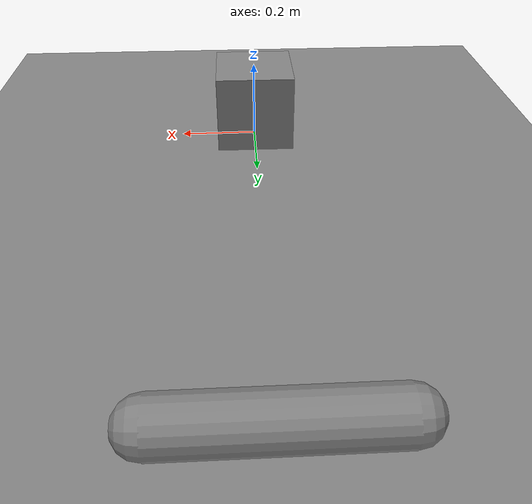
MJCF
<!-- Copyright 2026 -- CONTRIBUTORS. See LICENSE. -->
<!-- A box sliding on the floor until Coulomb friction stops it, and a
     capsule lying across it, rolling, with torsional and rolling friction. -->
<mujoco model="sliding">
  <worldbody>
    <geom name="floor" type="plane" size="0 0 1" friction="0.4 0.005 0.0001"/>
    <body name="box" pos="0 0 0.1">
      <freejoint/>
      <geom name="box" type="box" size="0.1 0.1 0.1" friction="0.4"/>
    </body>
    <body name="log" pos="0 1 0.05" euler="0 90 0">
      <freejoint/>
      <geom name="log" type="capsule" size="0.05 0.2" condim="6"
            friction="0.4 0.02 0.01"/>
    </body>
  </worldbody>
</mujoco>
